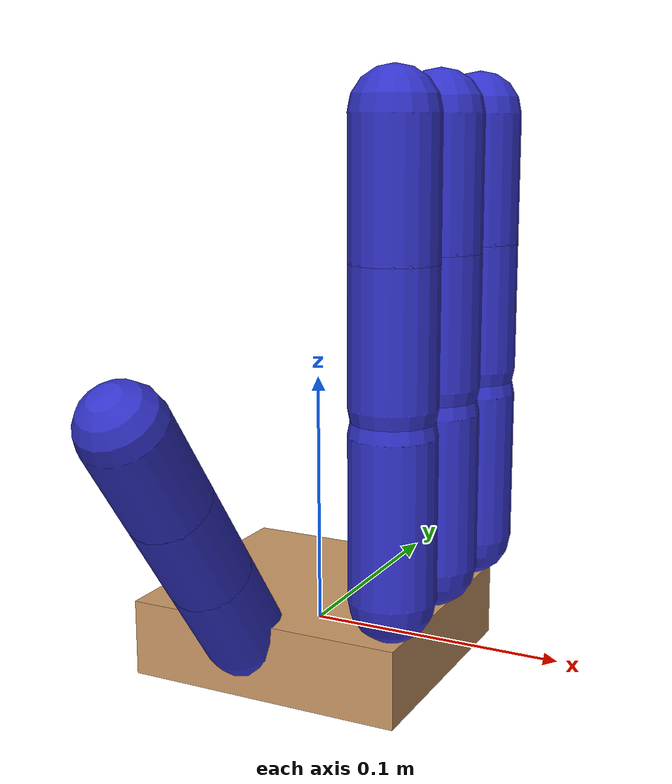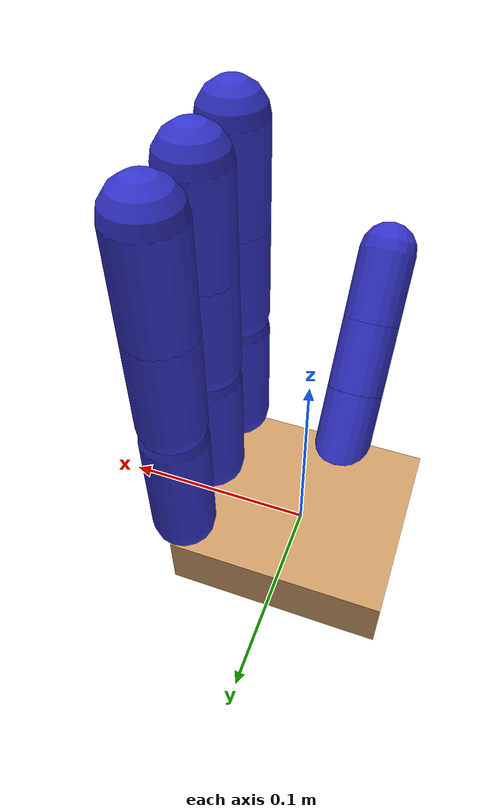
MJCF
<?xml version="1.0" ?>
<mujoco model="allegro_hand">

    <compiler
        angle="radian"
        coordinate="local"
        inertiafromgeom="true"
        autolimits="true"
    />

    <default>
        <joint limited="true" damping="0.1" armature="0.01"/>
        <motor ctrllimited="true" ctrlrange="-1 1"/>
        <geom friction="1.0 0.05 0.01" material="finger_material"/>
        <collision margin="0.001"/>
    </default>

    <option timestep="0.002" gravity="0 0 -9.81"/>
    <asset>
        <material name="hand_material" rgba="0.8 0.6 0.4 1"/>
        <material name="finger_material" rgba="0.2 0.2 0.8 1"/>
    </asset>

    <worldbody>

        <body name="palm" pos="0 0 0">
            <geom type="box" size="0.055 0.05 0.015" material="hand_material"/>

            <!-- (RF) -->
            <body name="rf_base" pos="0.05 0.04 0">
                <body name="rf_univ" pos="0 0 0">
                    <joint name="rfj0_twist" type="hinge" axis="0 0 1" range="-0.6 0.6"/>
                    <body name="rf_univ_sep" pos="0 0 0.001">
                        <joint name="rfj1" type="hinge" axis="0 -1 0" range="-1.7 0.6"/>
                        <body name="rf_proximal" pos="0 0 0.03">
                            <geom type="capsule" fromto="0 0 0 0 0 0.06" size="0.016" material="finger_material"/>
                            <body name="rf_middle" pos="0 0 0.07">
                                <joint name="rfj2" type="hinge" axis="0 -1 0" range="-0.35 1.3"/>
                                <geom type="capsule" fromto="0 0 0 0 0 0.05" size="0.016" material="finger_material"/>
                                <body name="rf_distal" pos="0 0 0.05">
                                    <joint name="rfj3" type="hinge" axis="0 -1 0" range="-0.2 1.5"/>
                                    <geom type="capsule" fromto="0 0 0 0 0 0.05" size="0.016" material="finger_material"/>
                                </body>
                            </body>
                        </body>
                    </body>
                </body>
            </body>

            <!-- (MF) -->
            <body name="mf_base" pos="0.05 0 0">
                <body name="mf_univ" pos="0 0 0">
                    <joint name="mfj0_twist" type="hinge" axis="0 0 1" range="-0.6 0.6"/>
                    <body name="mf_univ_sep" pos="0 0 0.001">
                        <joint name="mfj1" type="hinge" axis="0 -1 0" range="-1.7 0.6"/>
                        <body name="mf_proximal" pos="0 0 0.03">
                            <geom type="capsule" fromto="0 0 0 0 0 0.06" size="0.016" material="finger_material"/>
                            <body name="mf_middle" pos="0 0 0.07">
                                <joint name="mfj2" type="hinge" axis="0 -1 0" range="-0.35 1.3"/>
                                <geom type="capsule" fromto="0 0 0 0 0 0.05" size="0.016" material="finger_material"/>
                                <body name="mf_distal" pos="0 0 0.05">
                                    <joint name="mfj3" type="hinge" axis="0 -1 0" range="-0.2 1.5"/>
                                    <geom type="capsule" fromto="0 0 0 0 0 0.05" size="0.016" material="finger_material"/>
                                </body>
                            </body>
                        </body>
                    </body>
                </body>
            </body>

            <!-- (FF) -->
            <body name="ff_base" pos="0.05 -0.04 0">
                <body name="ff_univ" pos="0 0 0">
                    <joint name="ffj0_twist" type="hinge" axis="0 0 1" range="-0.6 0.6"/>
                    <body name="ff_univ_sep" pos="0 0 0.001">
                        <joint name="ffj1" type="hinge" axis="0 -1 0" range="-1.7 0.6"/>
                        <body name="ff_proximal" pos="0 0 0.03">
                            <geom type="capsule" fromto="0 0 0 0 0 0.06" size="0.016" material="finger_material"/>
                            <body name="ff_middle" pos="0 0 0.07">
                                <joint name="ffj2" type="hinge" axis="0 -1 0" range="-0.35 1.3"/>
                                <geom type="capsule" fromto="0 0 0 0 0 0.05" size="0.016" material="finger_material"/>
                                <body name="ff_distal" pos="0 0 0.05">
                                    <joint name="ffj3" type="hinge" axis="0 -1 0" range="-0.2 1.5"/>
                                    <geom type="capsule" fromto="0 0 0 0 0 0.05" size="0.016" material="finger_material"/>
                                </body>
                            </body>
                        </body>
                    </body>
                </body>
            </body>

            <!--(Thumb) -->
            <body name="th_base" pos="-0.01 -0.03 -0.01" quat="1 0.33 0 0">
                <geom type="cylinder" size="0.01 0.01" pos="0 0 0" material="finger_material"/>
                <body name="th_proximal" pos="0 0 0.02">
                    <body name="th_twist" pos="0 0 0">
                        <joint name="thj1_twist" type="hinge" axis="0 0 1" range="0.5 2.3"/>
                        <body name="th_proximal_bend" pos="0 0 0.001">
                            <joint name="thj1_bend" type="hinge" axis="0 1 0" range="-0.2 1.1"/>
                            <geom type="capsule" fromto="0 0 0 0 0 0.04" size="0.016" material="finger_material"/>
                            <body name="th_medial" pos="0 0 0.04">
                                <joint name="thj2" type="hinge" axis="0 1 0" range="-0.25 1.4"/>
                                <geom type="capsule" fromto="0 0 0 0 0 0.04" size="0.016" material="finger_material"/>
                                <body name="th_distal" pos="0 0 0.04">
                                    <joint name="thj3" type="hinge" axis="0 1 0" range="-0.2 1.6"/>
                                    <geom type="capsule" fromto="0 0 0 0 0 0.04" size="0.016" material="finger_material"/>
                                </body>
                            </body>
                        </body>
                    </body>
                </body>
            </body>
        </body>
    </worldbody>

    <actuator>

        <position name="rfa0" joint="rfj0_twist" class="base" ref="0.0"/>
        <position name="rfa1" joint="rfj1" class="proximal" ref="0.5"/>
        <position name="rfa2" joint="rfj2" class="medial" ref="1.3"/>
        <position name="rfa3" joint="rfj3" class="distal" ref="1.5"/>

        <position name="mfa0" joint="mfj0_twist" class="base" ref="0.0"/>
        <position name="mfa1" joint="mfj1" class="proximal" ref="0.5"/>
        <position name="mfa2" joint="mfj2" class="medial" ref="1.3"/>
        <position name="mfa3" joint="mfj3" class="distal" ref="1.5"/>

        <position name="ffa0" joint="ffj0_twist" class="base" ref="0.0"/>
        <position name="ffa1" joint="ffj1" class="proximal" ref="0.5"/>
        <position name="ffa2" joint="ffj2" class="medial" ref="1.3"/>
        <position name="ffa3" joint="ffj3" class="distal" ref="1.5"/>

        <position name="tha1" joint="thj1_twist" class="thumb_twist" ref="0.0"/>
        <position name="tha2" joint="thj1_bend" class="thumb_proximal" ref="1.1"/>
        <position name="tha3" joint="thj2" class="thumb_medial" ref="1.4"/>
        <position name="tha4" joint="thj3" class="thumb_distal" ref="1.6"/>
    </actuator>
</mujoco>
